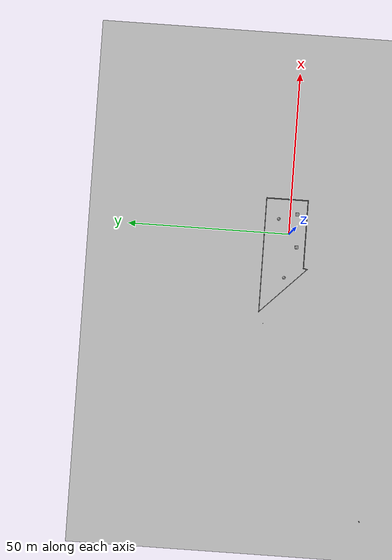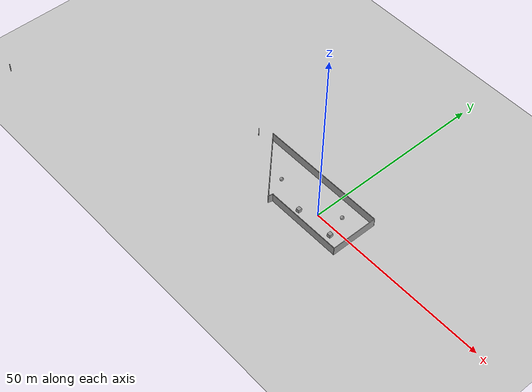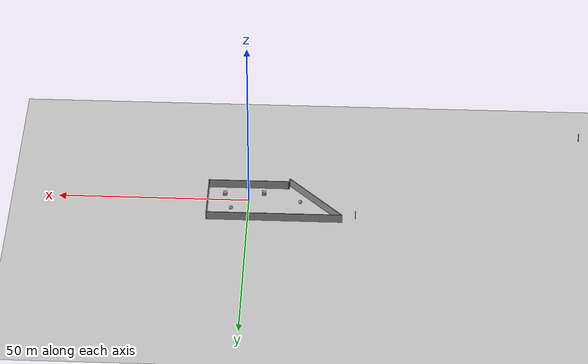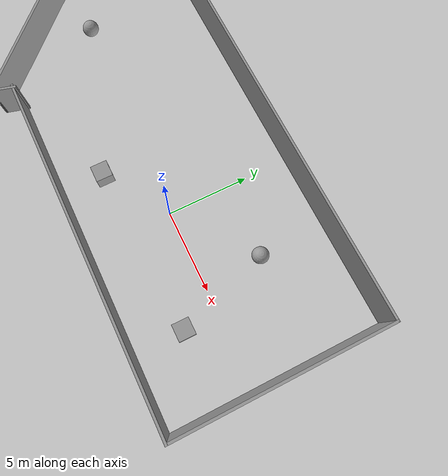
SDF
<sdf version="1.6">
 <world name="default">
  <light name="sun" type="directional">
   <pose>0 0 10 0 -0 0</pose>
   <diffuse>0.8 0.8 0.8 1</diffuse>
   <specular>0.2 0.2 0.2 1</specular>
   <attenuation>
    <range>1000</range>
    <constant>0.9</constant>
    <linear>0.01</linear>
    <quadratic>0.001</quadratic>
   </attenuation>
   <direction>-0.5 0.1 -0.9</direction>
  </light>
  <model name="ground_plane">
   <static>1</static>
   <link name="link">
    <collision name="collision">
     <geometry><plane><normal>0 0 1</normal><size>100 100</size></plane></geometry>
     <surface>
      <contact><collide_bitmask>65535</collide_bitmask></contact>
      <friction><ode><mu>100</mu><mu2>50</mu2></ode></friction>
     </surface>
    </collision>
    <visual name="visual">
     <cast_shadows>0</cast_shadows>
     <geometry><plane><normal>0 0 1</normal><size>100 100</size></plane></geometry>
     <material>
      <script><uri>file://media/materials/scripts/gazebo.material</uri><name>Gazebo/Grey</name></script>
     </material>
    </visual>
   </link>
  </model>
  <gravity>0 0 -9.8</gravity>
  <magnetic_field>6e-06 2.3e-05 -4.2e-05</magnetic_field>
  <atmosphere type="adiabatic"/>
  <physics name="default_physics" default="0" type="ode">
   <max_step_size>0.001</max_step_size>
   <real_time_factor>1</real_time_factor>
   <real_time_update_rate>1000</real_time_update_rate>
  </physics>
  <scene><ambient>0.4 0.4 0.4 1</ambient><background>0.7 0.7 0.7 1</background><shadows>1</shadows></scene>
  <spherical_coordinates>
   <surface_model>EARTH_WGS84</surface_model>
   <latitude_deg>0</latitude_deg>
   <longitude_deg>0</longitude_deg>
   <elevation>0</elevation>
   <heading_deg>0</heading_deg>
  </spherical_coordinates>
  <model name="model_pf">
   <pose>-38.162 -9.98745 0 0 -0 0</pose>
   <link name="Wall_11">
    <collision name="Wall_11_Collision">
     <geometry><box><size>0.16 0.15 2.5</size></box></geometry>
     <pose>0 0 1.25 0 -0 0</pose>
    </collision>
    <visual name="Wall_11_Visual">
     <pose>0 0 1.25 0 -0 0</pose>
     <geometry><box><size>0.16 0.15 2.5</size></box></geometry>
     <material>
      <script><uri>file://media/materials/scripts/gazebo.material</uri><name>Gazebo/Grey</name></script>
      <ambient>1 1 1 1</ambient>
     </material>
     <meta><layer>0</layer></meta>
    </visual>
    <pose>10.1042 16.1644 0 0 -0 0</pose>
   </link>
   <link name="Wall_38">
    <collision name="Wall_38_Collision">
     <geometry><box><size>21.25 0.15 2.5</size></box></geometry>
     <pose>0 0 1.25 0 -0 0</pose>
    </collision>
    <visual name="Wall_38_Visual">
     <pose>0 0 1.25 0 -0 0</pose>
     <geometry><box><size>21.25 0.15 2.5</size></box></geometry>
     <material>
      <script><uri>file://media/materials/scripts/gazebo.material</uri><name>Gazebo/Grey</name></script>
      <ambient>1 1 1 1</ambient>
     </material>
     <meta><layer>0</layer></meta>
    </visual>
    <pose>38.4011 4.87985 0 0 -0 0</pose>
   </link>
   <link name="Wall_39">
    <collision name="Wall_39_Collision">
     <geometry><box><size>13 0.15 2.5</size></box></geometry>
     <pose>0 0 1.25 0 -0 0</pose>
    </collision>
    <visual name="Wall_39_Visual">
     <pose>0 0 1.25 0 -0 0</pose>
     <geometry><box><size>13 0.15 2.5</size></box></geometry>
     <material>
      <script><uri>file://media/materials/scripts/gazebo.material</uri><name>Gazebo/Grey</name></script>
      <ambient>1 1 1 1</ambient>
     </material>
     <meta><layer>0</layer></meta>
    </visual>
    <pose>48.9511 11.3048 0 0 -0 1.5708</pose>
   </link>
   <link name="Wall_40">
    <collision name="Wall_40_Collision">
     <geometry><box><size>35.5 0.15 2.5</size></box></geometry>
     <pose>0 0 1.25 0 -0 0</pose>
    </collision>
    <visual name="Wall_40_Visual">
     <pose>0 0 1.25 0 -0 0</pose>
     <geometry><box><size>35.5 0.15 2.5</size></box></geometry>
     <material>
      <script><uri>file://media/materials/scripts/gazebo.material</uri><name>Gazebo/Grey</name></script>
      <ambient>1 1 1 1</ambient>
     </material>
     <meta><layer>0</layer></meta>
    </visual>
    <pose>31.2761 17.7298 0 0 -0 3.14159</pose>
   </link>
   <link name="Wall_41">
    <collision name="Wall_41_Collision">
     <geometry><box><size>20 0.15 2.5</size></box></geometry>
     <pose>0 0 1.25 0 -0 0</pose>
    </collision>
    <visual name="Wall_41_Visual">
     <pose>0 0 1.25 0 -0 0</pose>
     <geometry><box><size>20 0.15 2.5</size></box></geometry>
     <material>
      <script><uri>file://media/materials/scripts/gazebo.material</uri><name>Gazebo/Grey</name></script>
      <ambient>1 1 1 1</ambient>
     </material>
     <meta><layer>0</layer></meta>
    </visual>
    <pose>20.6192 10.7118 0 0 -0 -0.785398</pose>
   </link>
   <link name="Wall_42">
    <collision name="Wall_42_Collision">
     <geometry><box><size>1.5 0.15 2.5</size></box></geometry>
     <pose>0 0 1.25 0 -0 0</pose>
    </collision>
    <visual name="Wall_42_Visual">
     <pose>0 0 1.25 0 -0 0</pose>
     <geometry><box><size>1.5 0.15 2.5</size></box></geometry>
     <material>
      <script><uri>file://media/materials/scripts/gazebo.material</uri><name>Gazebo/Grey</name></script>
      <ambient>1 1 1 1</ambient>
     </material>
     <meta><layer>0</layer></meta>
    </visual>
    <pose>27.8119 4.34577 0 0 -0 1.309</pose>
   </link>
   <link name="Wall_8">
    <collision name="Wall_8_Collision">
     <geometry><box><size>0.16 0.15 2.5</size></box></geometry>
     <pose>0 0 1.25 0 -0 0</pose>
    </collision>
    <visual name="Wall_8_Visual">
     <pose>0 0 1.25 0 -0 0</pose>
     <geometry><box><size>0.16 0.15 2.5</size></box></geometry>
     <material>
      <script><uri>file://media/materials/scripts/gazebo.material</uri><name>Gazebo/Grey</name></script>
      <ambient>0 0 0 1</ambient>
     </material>
     <meta><layer>0</layer></meta>
    </visual>
    <pose>-48.9461 -17.7609 0 0 -0 0</pose>
   </link>
   <static>1</static>
  </model>
  <model name="unit_sphere">
   <pose>4.57034 3.53104 0.5 0 -0 0</pose>
   <link name="link">
    <inertial>
     <mass>1</mass>
     <inertia><ixx>0.1</ixx><ixy>0</ixy><ixz>0</ixz><iyy>0.1</iyy><iyz>0</iyz><izz>0.1</izz></inertia>
    </inertial>
    <collision name="collision"><geometry><sphere><radius>0.5</radius></sphere></geometry></collision>
    <visual name="visual">
     <geometry><sphere><radius>0.5</radius></sphere></geometry>
     <material>
      <script><name>Gazebo/Grey</name><uri>file://media/materials/scripts/gazebo.material</uri></script>
     </material>
    </visual>
   </link>
  </model>
  <model name="unit_box">
   <pose>-3.81521 -2.5368 0.499995 0 1e-05 0</pose>
   <link name="link">
    <inertial>
     <mass>1</mass>
     <inertia>
      <ixx>0.166667</ixx>
      <ixy>0</ixy>
      <ixz>0</ixz>
      <iyy>0.166667</iyy>
      <iyz>0</iyz>
      <izz>0.166667</izz>
     </inertia>
    </inertial>
    <collision name="collision"><geometry><box><size>1 1 1</size></box></geometry></collision>
    <visual name="visual">
     <geometry><box><size>1 1 1</size></box></geometry>
     <material>
      <script><name>Gazebo/Grey</name><uri>file://media/materials/scripts/gazebo.material</uri></script>
     </material>
    </visual>
   </link>
  </model>
  <model name="unit_box_0">
   <pose>6.3625 -2.10252 0.499995 -1e-05 -0 0</pose>
   <link name="link">
    <inertial>
     <mass>1</mass>
     <inertia>
      <ixx>0.166667</ixx>
      <ixy>0</ixy>
      <ixz>0</ixz>
      <iyy>0.166667</iyy>
      <iyz>0</iyz>
      <izz>0.166667</izz>
     </inertia>
    </inertial>
    <collision name="collision"><geometry><box><size>1 1 1</size></box></geometry></collision>
    <visual name="visual">
     <geometry><box><size>1 1 1</size></box></geometry>
     <material>
      <script><name>Gazebo/Grey</name><uri>file://media/materials/scripts/gazebo.material</uri></script>
     </material>
    </visual>
   </link>
  </model>
  <model name="unit_sphere_0">
   <pose>-13.4901 0.679733 0.5 0 -0 0</pose>
   <link name="link">
    <inertial>
     <mass>1</mass>
     <inertia><ixx>0.1</ixx><ixy>0</ixy><ixz>0</ixz><iyy>0.1</iyy><iyz>0</iyz><izz>0.1</izz></inertia>
    </inertial>
    <collision name="collision"><geometry><sphere><radius>0.5</radius></sphere></geometry></collision>
    <visual name="visual">
     <geometry><sphere><radius>0.5</radius></sphere></geometry>
     <material>
      <script><name>Gazebo/Grey</name><uri>file://media/materials/scripts/gazebo.material</uri></script>
     </material>
    </visual>
   </link>
  </model>
 </world>
</sdf>
